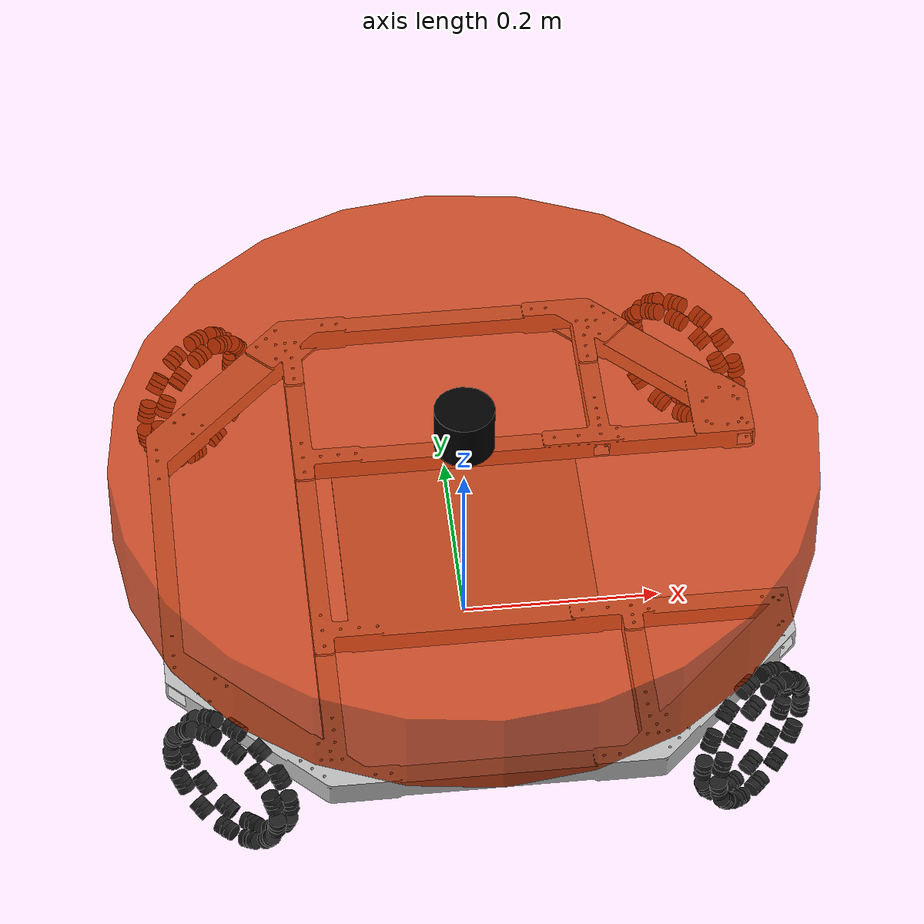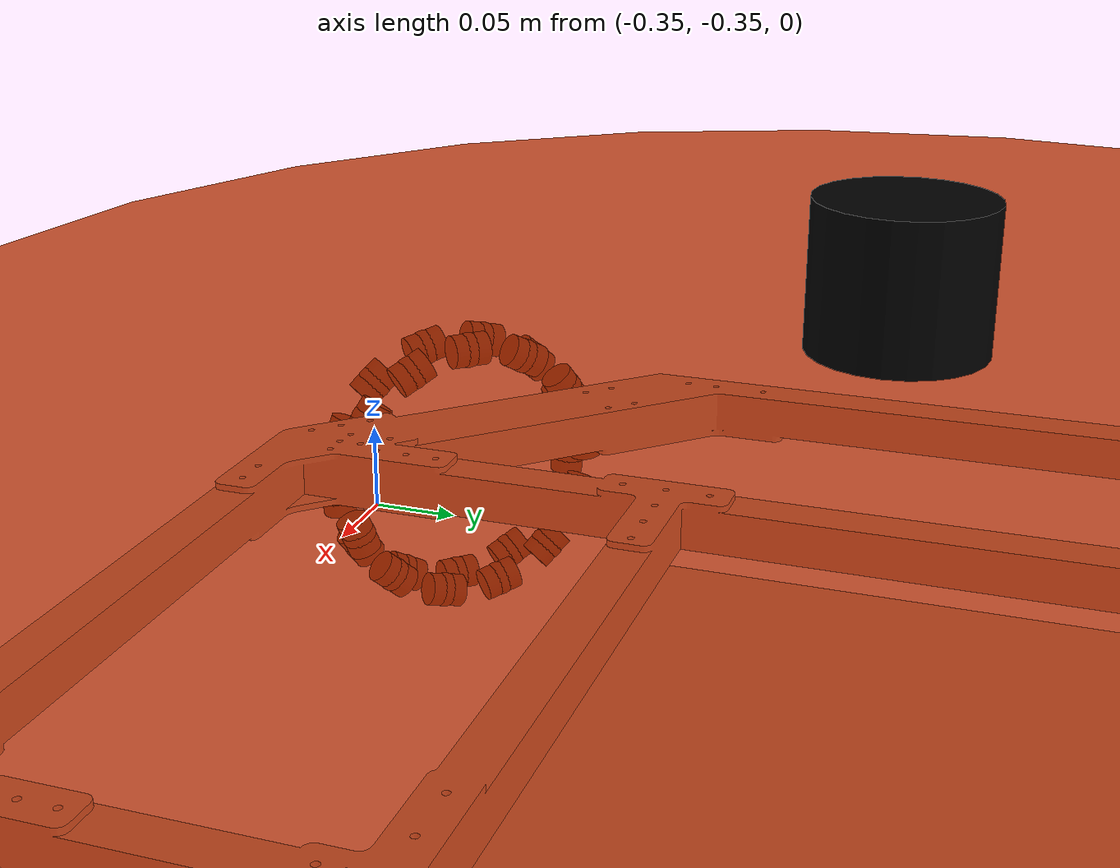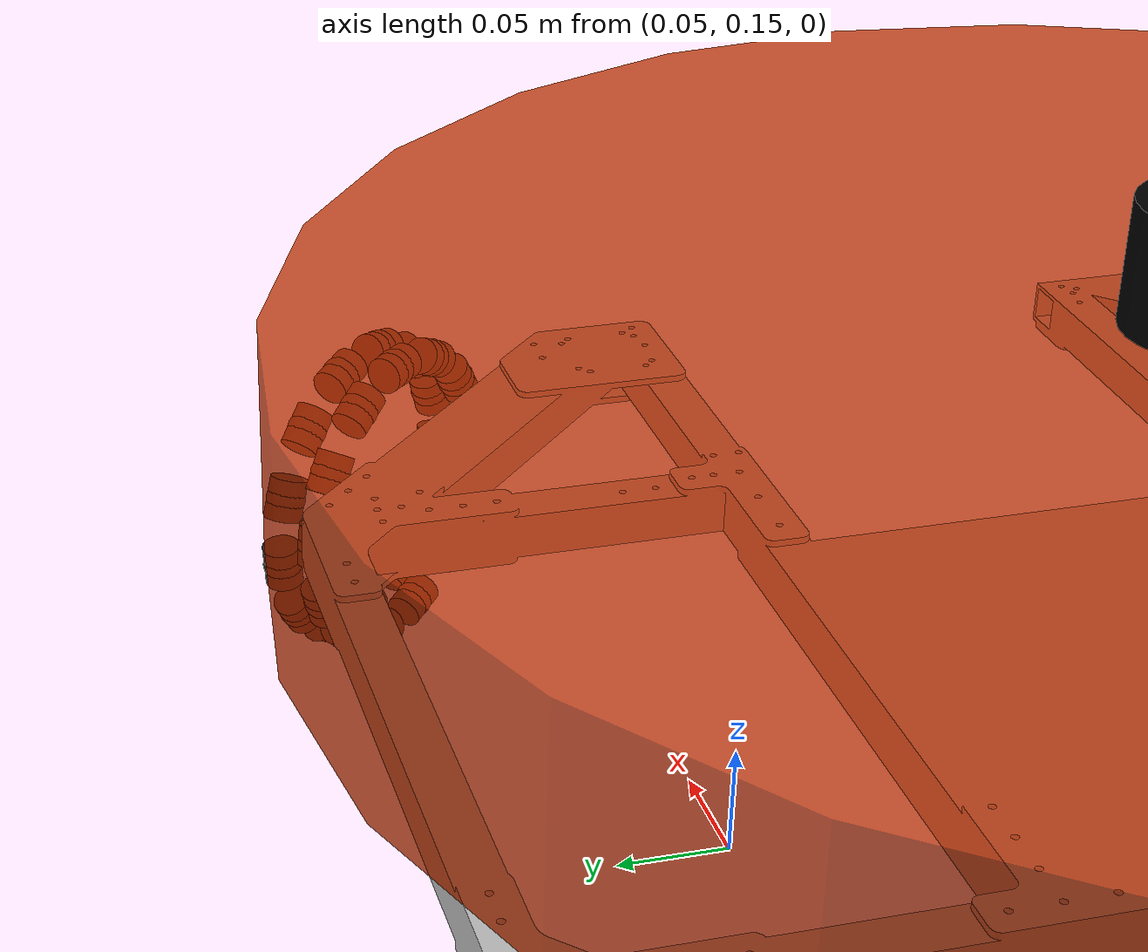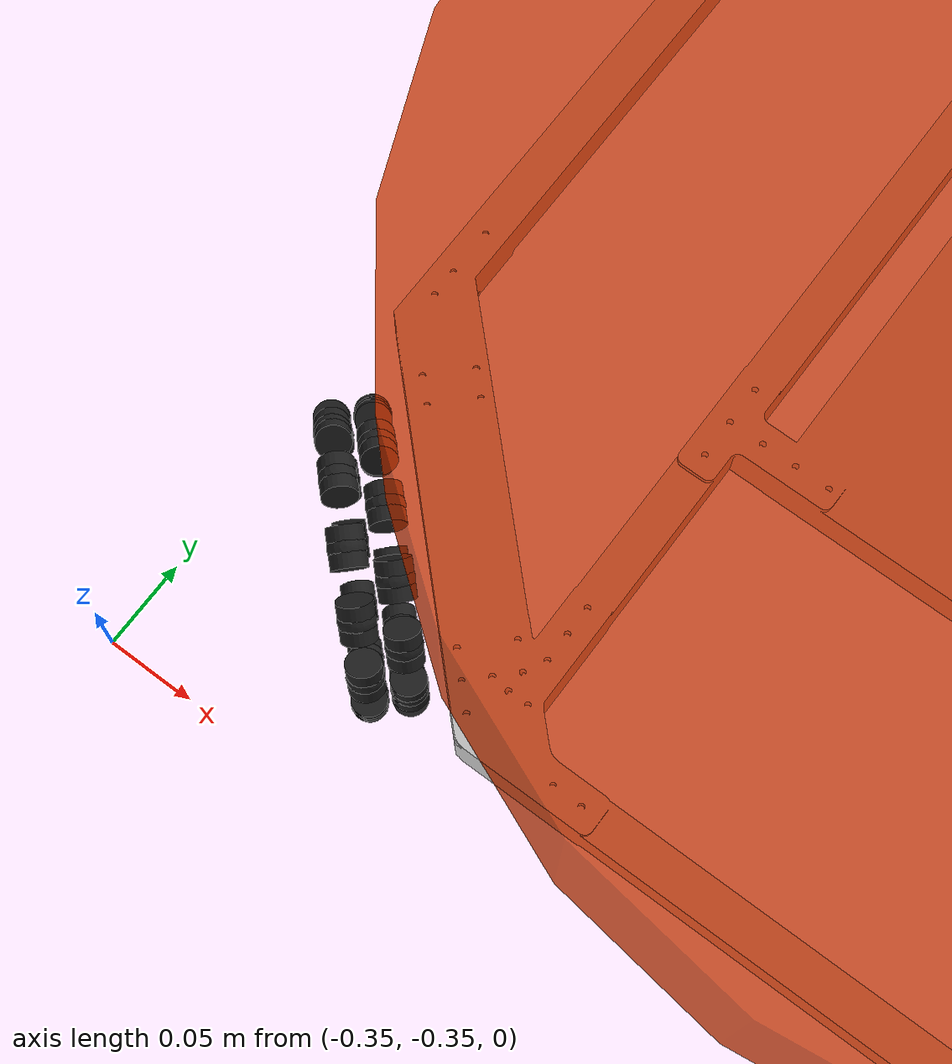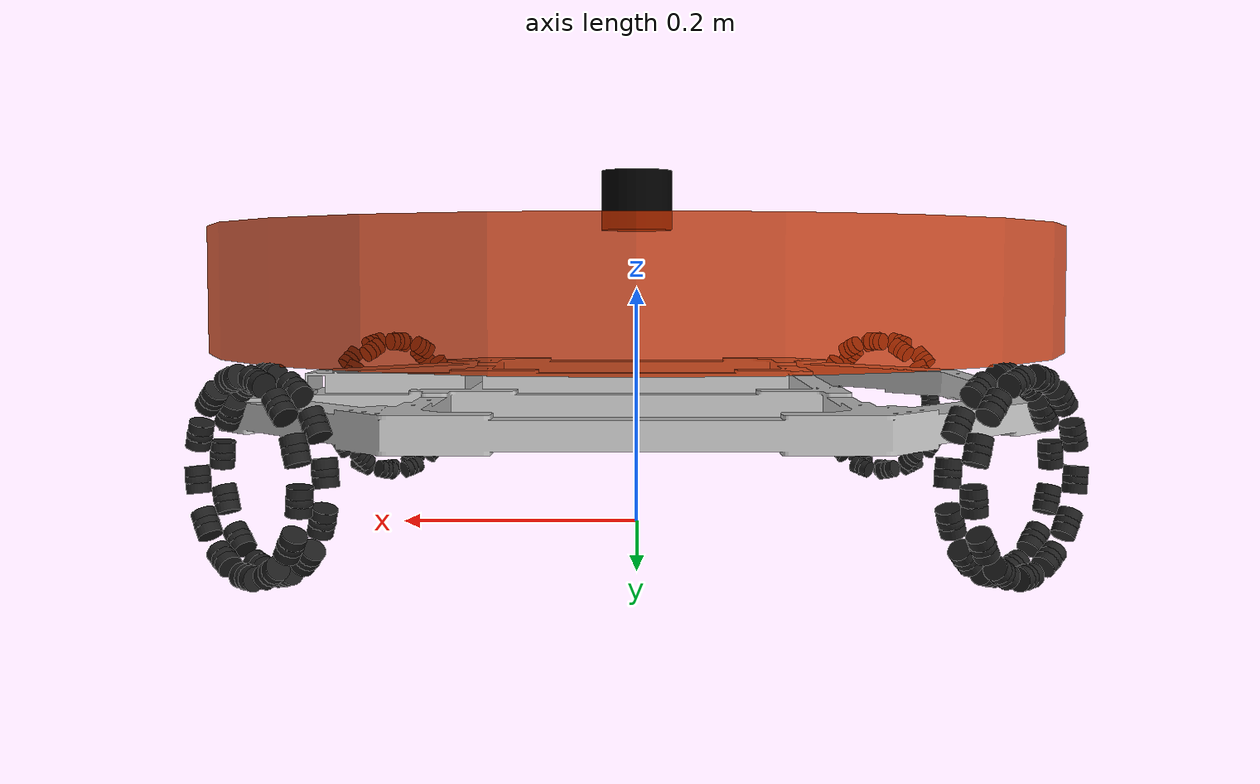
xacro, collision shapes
<robot xmlns:xacro="http://www.ros.org/wiki/xacro" name="four-wheel_chassis">

    <xacro:arg name="use_sim" default="true"/>
    <xacro:arg name="robot_namespace" default="robot1" />
    <xacro:arg name="base_color" default="Black" />
    <xacro:include filename="$(find rc_description)/urdf/rc_r2/omni_wheel.urdf.xacro"/>
    <xacro:include filename="$(find rc_description)/urdf/common/action.urdf.xacro" />
    <xacro:include filename="$(find rc_description)/urdf/common/laser.xacro" />
    <xacro:property name="roller_type" value="simple" />
    <!-- https://upload.wikimedia.org/wikipedia/commons/5/52/Wheelbase_and_Track.png -->
    <xacro:property name="chassis_radius" value="0.36"/>
    <xacro:property name="wheel_offset_z" value="-0.02373"/>

    <!-- 底盘 -->
    <link name="base_footprint">
      <visual>
        <geometry>
          <sphere radius="0.001" />
        </geometry>
      </visual>
    </link>

    <joint name="base_link2base_footprint" type="fixed">
      <parent link="base_footprint" />
      <child link="base_link" />
      <origin xyz="0 0 0.1" />
    </joint>
    <gazebo reference="base_link">
        <material>Gazebo/$(arg base_color)</material>
    </gazebo>

    <link name="base_link">
    <inertial>
        <origin xyz="0.0168607923484386 0.0118160085012626 -0.336154515273156" rpy="0 0 0" />
        <mass value="7.33831258310109" />
        <inertia
            ixx="0.0140633849923985"
            ixy="1.0018361923056E-11"
            ixz="5.53434626777321E-06"
            iyy="0.0399212998593135"
            iyz="-2.09986324422919E-05"
            izz="0.0267312391673464" />
        </inertial>
    <visual>
        <origin
            xyz="0 0 0"
            rpy="0 0 0" />
        <geometry>
            <mesh
              filename="package://rc_description/meshes/rc_r2/base_link.STL" />
        </geometry>
        <material
            name="">
        <color
          rgba="0.752941176470588 0.752941176470588 0.752941176470588 1" />
        </material>
    </visual>

    <collision>
        <origin
            xyz="0 0 0"
            rpy="0 0 0" />
        <geometry>
        <mesh
            filename="package://rc_description/meshes/rc_r2/base_link.STL" />
        </geometry>
    </collision>
    </link>

    <xacro:ACTION connected_to="base_link" action_name="location_action" use_sim="$(arg use_sim)" robot_namespace="$(arg robot_namespace)"
                      xyz="0.0 0 0"
                      rpy="0.0 0.0 0.0"
                      />

    <xacro:omni_wheel prefix="left_front" connected_to="base_link"
                        wheel_x_offset="${chassis_radius/sqrt(2)}" wheel_y_offset="${chassis_radius/sqrt(2)}"
                        wheel_z_offset="${wheel_offset_z}" rotation_degree="${3*pi/4}" roller_type="${roller_type}"
                        max_effort="5" max_velocity="50"
    />
    <xacro:omni_wheel prefix="right_front" connected_to="base_link"
                        wheel_x_offset="${chassis_radius/sqrt(2)}" wheel_y_offset="${-chassis_radius/sqrt(2)}"
                        wheel_z_offset="${wheel_offset_z}" rotation_degree="${pi/4}" roller_type="${roller_type}"
                        max_effort="5" max_velocity="50"
    />
    <xacro:omni_wheel prefix="left_back" connected_to="base_link"
                        wheel_x_offset="${-chassis_radius/sqrt(2)}" wheel_y_offset="${chassis_radius/sqrt(2)}"
                        wheel_z_offset="${wheel_offset_z}" rotation_degree="${-3*pi/4}" roller_type="${roller_type}"
                        max_effort="5" max_velocity="50"
    />
    <xacro:omni_wheel prefix="right_back" connected_to="base_link"
                        wheel_x_offset="${-chassis_radius/sqrt(2)}" wheel_y_offset="${-chassis_radius/sqrt(2)}"
                        wheel_z_offset="${wheel_offset_z}" rotation_degree="${-pi/4}" roller_type="${roller_type}"
                        max_effort="5" max_velocity="50"
    />

    <xacro:wheel_transmission prefix="left_front" mechanical_reduction="-19.2032"/>
    <xacro:wheel_transmission prefix="right_front" mechanical_reduction="-19.2032"/>
    <xacro:wheel_transmission prefix="left_back" mechanical_reduction="-19.2032"/>
    <xacro:wheel_transmission prefix="right_back" mechanical_reduction="-19.2032"/>

    <gazebo>
        <plugin name="rc_ros_control" filename="librc_robot_hw_sim.so">
            <robotNamespace>$(arg robot_namespace)</robotNamespace>
            <robotSimType>rc_gazebo/rcRobotHWSim</robotSimType>
            <publish_tf>false</publish_tf>
        </plugin>
    </gazebo>

</robot>

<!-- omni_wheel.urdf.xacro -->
<robot xmlns:xacro="http://www.ros.org/wiki/xacro" name="omni_wheel">

    <xacro:property name="wheel_radius" value="0.0762"/>
    <xacro:property name="roller_radius" value="0.009"/>

    <xacro:macro name="roller" params="prefix suffix theta roller_type">
        <xacro:if value="${suffix % 2 == 1}">
            <xacro:property name="joint_y_offset" value="0.009563"/>
        </xacro:if>
        <xacro:if value="${suffix % 2 == 0}">
            <xacro:property name="joint_y_offset" value="-0.009563"/>
        </xacro:if>

        <!--  link  -->
        <link name="${prefix}_roller_${suffix}">
            <xacro:if value="${roller_type=='simple'}">
                <visual>
                    <origin xyz="0 0 0" rpy="0 0 0"/>
                    <geometry>
                        <mesh filename="package://rc_description/meshes/rc_r2/omni_roller.stl"
                              scale="0.001 0.001 0.001"/>
                    </geometry>
                </visual>
                <collision>
                    <geometry>
                        <sphere radius="${roller_radius}"/>
                    </geometry>
                </collision>
                <collision>
                    <origin rpy="0 1.57 0" xyz="0 0 0"/>
                    <geometry>
                        <cylinder length="19e-3" radius="8.6e-3"/>
                    </geometry>
                </collision>
            </xacro:if>
            <inertial>
                <mass value="0.0058"/>
                <inertia ixx="270.867e-9" ixy="1.547e-19" ixz="2.133e-19" iyy="291.412e-9" iyz="0.0" izz="291.412e-9"/>
            </inertial>
        </link>

        <joint name="${prefix}_roller_${suffix}_joint" type="continuous">
            <origin
                    xyz="${(wheel_radius-roller_radius)*cos(theta-pi/2)} ${joint_y_offset} ${(wheel_radius-roller_radius)*sin(theta-pi/2)}"
                    rpy="0 ${-theta} 0"/>
            <axis xyz="1 0 0"/>
            <dynamics damping="0.0" friction="0.001"/>
            <parent link="${prefix}_wheel"/>
            <child link="${prefix}_roller_${suffix}"/>
        </joint>

        <gazebo reference="${prefix}_roller_${suffix}">
            <mu1 value="2000.0"/>
            <mu2 value="2000.0"/>
            <kp value="1000000.0"/>
            <kd value="100.0"/>
            <material>Gazebo/Black</material>
        </gazebo>

    </xacro:macro>

    <xacro:macro name="omni_wheel"
                 params="prefix connected_to wheel_x_offset wheel_y_offset wheel_z_offset rotation_degree roller_type max_effort max_velocity">
        <!--  link  -->
        <link name="${prefix}_wheel">
            <visual>
                <geometry>
                    <mesh filename="package://rc_description/meshes/rc_r2/omni_wheel.stl"
                          scale="0.001 0.001 0.001"/>
                </geometry>
            </visual>
            <inertial>
                <mass value="0.59"/>
                <inertia ixx="1.416e-3" ixy="0.0" ixz="0.0" iyy="2.749e-3" iyz="0.0" izz="1.416e-3"/>
            </inertial>
        </link>

        <!--  joint  -->
        <joint name="${prefix}_wheel_joint" type="revolute">
            <axis xyz="0 1 0"/>
            <origin xyz="${wheel_x_offset} ${wheel_y_offset} ${wheel_offset_z}" rpy="0 0 ${rotation_degree}"/>
            <!--      limit not work while type="continuous"-->
            <limit effort="${max_effort}" velocity="${max_velocity}" lower="-1e9" upper="1e9"/>
            <dynamics damping="0.0" friction="0.05"/>
            <parent link="${connected_to}"/>
            <child link="${prefix}_wheel"/>
        </joint>

        <xacro:unless value="${roller_type=='none'}">
            <xacro:roller prefix="${prefix}" suffix="0" theta="${0*pi/13}" roller_type="${roller_type}"/>
            <xacro:roller prefix="${prefix}" suffix="1" theta="${1*pi/13}" roller_type="${roller_type}"/>
            <xacro:roller prefix="${prefix}" suffix="2" theta="${2*pi/13}" roller_type="${roller_type}"/>
            <xacro:roller prefix="${prefix}" suffix="3" theta="${3*pi/13}" roller_type="${roller_type}"/>
            <xacro:roller prefix="${prefix}" suffix="4" theta="${4*pi/13}" roller_type="${roller_type}"/>
            <xacro:roller prefix="${prefix}" suffix="5" theta="${5*pi/13}" roller_type="${roller_type}"/>
            <xacro:roller prefix="${prefix}" suffix="6" theta="${6*pi/13}" roller_type="${roller_type}"/>
            <xacro:roller prefix="${prefix}" suffix="7" theta="${7*pi/13}" roller_type="${roller_type}"/>
            <xacro:roller prefix="${prefix}" suffix="8" theta="${8*pi/13}" roller_type="${roller_type}"/>
            <xacro:roller prefix="${prefix}" suffix="9" theta="${9*pi/13}" roller_type="${roller_type}"/>
            <xacro:roller prefix="${prefix}" suffix="10" theta="${10*pi/13}" roller_type="${roller_type}"/>
            <xacro:roller prefix="${prefix}" suffix="11" theta="${11*pi/13}" roller_type="${roller_type}"/>
            <xacro:roller prefix="${prefix}" suffix="12" theta="${12*pi/13}" roller_type="${roller_type}"/>
            <xacro:roller prefix="${prefix}" suffix="13" theta="${13*pi/13}" roller_type="${roller_type}"/>
            <xacro:roller prefix="${prefix}" suffix="14" theta="${14*pi/13}" roller_type="${roller_type}"/>
            <xacro:roller prefix="${prefix}" suffix="15" theta="${15*pi/13}" roller_type="${roller_type}"/>
            <xacro:roller prefix="${prefix}" suffix="16" theta="${16*pi/13}" roller_type="${roller_type}"/>
            <xacro:roller prefix="${prefix}" suffix="17" theta="${17*pi/13}" roller_type="${roller_type}"/>
            <xacro:roller prefix="${prefix}" suffix="18" theta="${18*pi/13}" roller_type="${roller_type}"/>
            <xacro:roller prefix="${prefix}" suffix="19" theta="${19*pi/13}" roller_type="${roller_type}"/>
            <xacro:roller prefix="${prefix}" suffix="20" theta="${20*pi/13}" roller_type="${roller_type}"/>
            <xacro:roller prefix="${prefix}" suffix="21" theta="${21*pi/13}" roller_type="${roller_type}"/>
            <xacro:roller prefix="${prefix}" suffix="22" theta="${22*pi/13}" roller_type="${roller_type}"/>
            <xacro:roller prefix="${prefix}" suffix="23" theta="${23*pi/13}" roller_type="${roller_type}"/>
            <xacro:roller prefix="${prefix}" suffix="24" theta="${24*pi/13}" roller_type="${roller_type}"/>
            <xacro:roller prefix="${prefix}" suffix="25" theta="${25*pi/13}" roller_type="${roller_type}"/>
        </xacro:unless>

    </xacro:macro>

    <xacro:macro name="wheel_transmission" params="prefix mechanical_reduction">
        <transmission name="${prefix}_wheel_trans">
            <type>transmission_interface/SimpleTransmission</type>
            <actuator name="${prefix}_wheel_motor">
                <hardwareInterface>hardware_interface/EffortJointInterface</hardwareInterface>
                <mechanicalReduction>${mechanical_reduction}</mechanicalReduction>
            </actuator>
            <joint name="${prefix}_wheel_joint">
                <hardwareInterface>hardware_interface/EffortJointInterface</hardwareInterface>
            </joint>
        </transmission>
    </xacro:macro>

</robot>

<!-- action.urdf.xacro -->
<robot xmlns:xacro="http://www.ros.org/wiki/xacro" name="action">
    <xacro:arg name="robot_namespace" default="robot1" />
    <xacro:arg name="use_sim" default="true" />
    <xacro:macro name="ACTION" params="connected_to action_name use_sim robot_namespace xyz:='0 0 0' rpy:='0 0 0' ">
        <!-- action is fixed to the base link -->
        <joint name="${action_name}_joint" type="fixed">
            <origin xyz="${xyz}" rpy="${rpy}"/>
            <parent link="${connected_to}"/>
            <child link="${action_name}"/>
        </joint>
        <!-- action link -->
        <link name="${action_name}">
            <inertial>
                <mass value="0.01"/>
                <origin rpy="0 0 0" xyz="0 0 0"/>
                <inertia ixx="0.000001" ixy="0" ixz="0" iyy="0.000001" iyz="0" izz="0.000001"/>
            </inertial>
            <visual>
                <origin rpy="0 0 0" xyz="0 0 0"/>
                <geometry>
                    <mesh filename="package://rc_description/meshes/common/action.stl" scale="1.0 1.0 1.0"/>
                </geometry>
            </visual>
        </link>
        <gazebo reference="${action_name}_joint">
            <disableFixedJointLumping>true</disableFixedJointLumping>
        </gazebo>

        <gazebo>
            <plugin name="rc_ros_control" filename="librc_action_hw_sim.so">
                <robotNamespace>$(arg robot_namespace)</robotNamespace>
                <robotSimType>rc_gazebo/RcRobotHWSim</robotSimType>
                <publish_tf>false</publish_tf>
            </plugin>
        </gazebo>
    </xacro:macro>
</robot>

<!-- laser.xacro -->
<!--
    小车底盘添加雷达
-->
<robot name="my_laser" xmlns:xacro="http://wiki.ros.org/xacro">

    <material name="black">
        <color rgba="0 0 0 1"/>
    </material>
    <xacro:macro name="sphere_inertial_matrix" params="m r">
        <inertial>
            <mass value="${m}" />
            <inertia ixx="${2*m*r*r/5}" ixy="0" ixz="0"
                iyy="${2*m*r*r/5}" iyz="0"
                izz="${2*m*r*r/5}" />
        </inertial>
    </xacro:macro>

    <xacro:macro name="cylinder_inertial_matrix" params="m r h">
        <inertial>
            <mass value="${m}" />
            <inertia ixx="${m*(3*r*r+h*h)/12}" ixy = "0" ixz = "0"
                iyy="${m*(3*r*r+h*h)/12}" iyz = "0"
                izz="${m*r*r/2}" />
        </inertial>
    </xacro:macro>

    <xacro:macro name="Box_inertial_matrix" params="m l w h">
       <inertial>
               <mass value="${m}" />
               <inertia ixx="${m*(h*h + l*l)/12}" ixy = "0" ixz = "0"
                   iyy="${m*(w*w + l*l)/12}" iyz= "0"
                   izz="${m*(w*w + h*h)/12}" />
       </inertial>
   </xacro:macro>

    <!-- 雷达支架 -->
    <xacro:property name="support_length" value="0.1" /> <!-- 支架长度 -->
    <xacro:property name="support_radius" value="0.35" /> <!-- 支架半径 -->
    <xacro:property name="support_x" value="0.0" /> <!-- 支架安装的x坐标 -->
    <xacro:property name="support_y" value="0.0" /> <!-- 支架安装的y坐标 -->
    <xacro:property name="support_z" value="0.1" /><!-- 支架安装的z坐标:底盘高度 / 2 + 支架高度 / 2  -->
    <xacro:property name="support_m" value="0.02" /> <!-- 支架质量 -->

    <link name="support">
        <visual>
            <geometry>
                <cylinder radius="${support_radius}" length="${support_length}" />
            </geometry>
            <origin xyz="0.0 0.0 0.0" rpy="0.0 0.0 0.0" />
            <material name="red">
                <color rgba="0.8 0.2 0.0 0.8" />
            </material>
        </visual>

        <collision>
            <geometry>
                <cylinder radius="${support_radius}" length="${support_length}" />
            </geometry>
            <origin xyz="0.0 0.0 0.0" rpy="0.0 0.0 0.0" />
        </collision>

        <xacro:cylinder_inertial_matrix m="${support_m}" r="${support_radius}" h="${support_length}" />

    </link>

    <joint name="support2base_link" type="fixed">
        <parent link="base_link" />
        <child link="support" />
        <origin xyz="${support_x} ${support_y} ${support_z}" />
    </joint>

    <gazebo reference="support">
        <material>Gazebo/White</material>
    </gazebo>

    <!-- 雷达属性 -->
    <xacro:property name="laser_length" value="0.05" /> <!-- 雷达长度 -->
    <xacro:property name="laser_radius" value="0.03" /> <!-- 雷达半径 -->
    <xacro:property name="laser_x" value="0.0" /> <!-- 雷达安装的x坐标 -->
    <xacro:property name="laser_y" value="0.0" /> <!-- 雷达安装的y坐标 -->
    <xacro:property name="laser_z" value="${support_length / 2 + laser_length / 2}" /> <!-- 雷达安装的z坐标:支架高度 / 2 + 雷达高度 / 2  -->

    <xacro:property name="laser_m" value="0.1" /> <!-- 雷达质量 -->

    <!-- 雷达关节以及link -->
    <link name="laser">
        <visual>
            <geometry>
                <cylinder radius="${laser_radius}" length="${laser_length}" />
            </geometry>
            <origin xyz="0.0 0.0 0.0" rpy="0.0 0.0 0.0" />
            <material name="black" />
        </visual>
        <collision>
            <geometry>
                <cylinder radius="${laser_radius}" length="${laser_length}" />
            </geometry>
            <origin xyz="0.0 0.0 0.0" rpy="0.0 0.0 0.0" />
        </collision>
        <xacro:cylinder_inertial_matrix m="${laser_m}" r="${laser_radius}" h="${laser_length}" />
    </link>

    <joint name="laser2support" type="fixed">
        <parent link="support" />
        <child link="laser" />
        <origin xyz="${laser_x} ${laser_y} ${laser_z}" />
    </joint>
    <gazebo reference="laser">
        <material>Gazebo/Black</material>
    </gazebo>
</robot>
